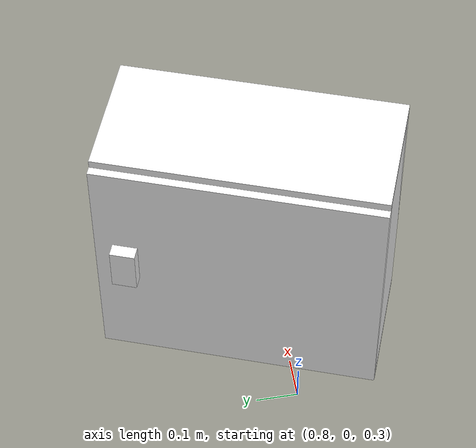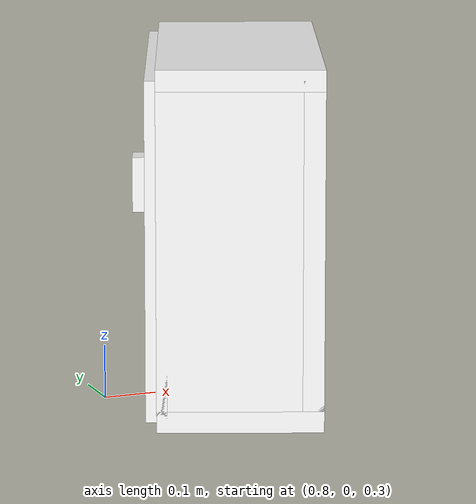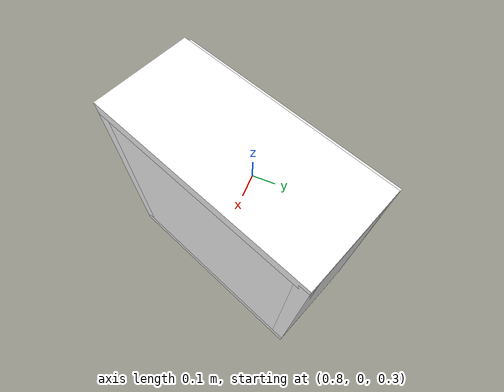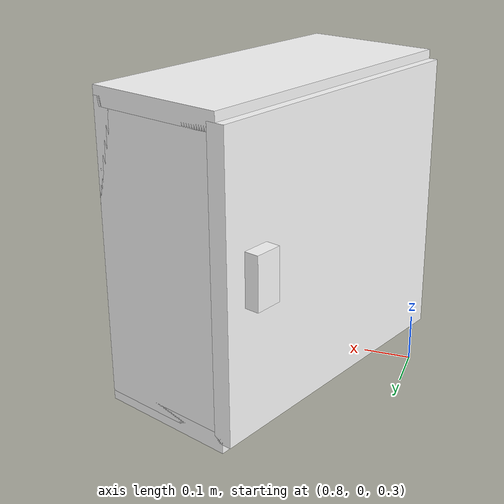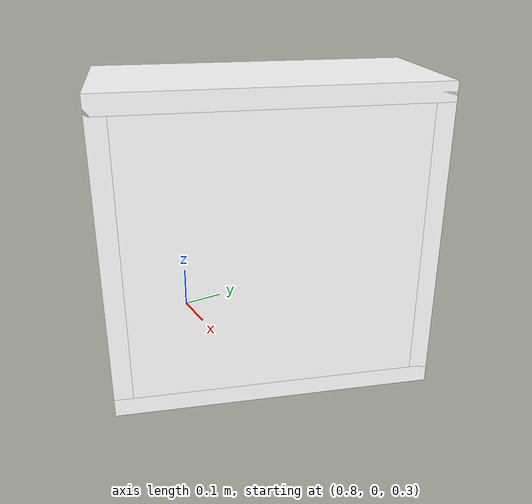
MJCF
<mujoco model="cabinet">
    <compiler angle="radian" eulerseq='zxy' />
    <option gravity = "0 0 0" />
    <option>
        <flag contact = "disable"/>
    </option>
    <statistic	extent="1.0" center="0.0 0.0 0.0"/>
    <visual>
        <map fogstart="3" fogend="5" force="0.1" znear=" 0.100000 " zfar=" 12.000000 "/>
    </visual>
    <size njmax="500" nconmax="100" />
    <actuator>
        <velocity joint="bottom_left_hinge" name="viva_revolution" kv='10'></velocity>
    </actuator>
    <asset>
        <texture builtin="flat" name="tabletex" height="32" width="32" rgb1="1 1 1" type="cube"></texture>
        <texture builtin="flat" name="objtex" height="32" width="32" rgb1="1 1 1" type="cube"></texture>
        <texture builtin="flat" name="handletex" height="32" width="32" rgb1="1 1 1" type="cube"></texture>
        <texture builtin="flat" name="wallpaper" height="32" width="32" rgb1="1 1 1" type="cube"></texture>
        <material name="geomTable" shininess="0.03" specular="0.75" texture="tabletex"></material>
        <material name="geomObj" shininess="0.03" specular="0.75" texture="objtex"></material>
        <material name="geomHandle" shininess="0.03" specular="0.75" texture="handletex"></material>
        <material name="bg" shininess="0.03" specular="0.75" texture="wallpaper"></material>
    </asset>
    <worldbody>
            <body name="cabinet_bottom" pos= " 1.091654 0.064861 0.297707 "  quat= " 0.177827 0.000000 0.000000 0.984062" >
                <inertial pos="0 0 0" mass="1" diaginertia="1 1 1" />
                <geom size= " 0.152638 0.339789 0.019749 "  type="box" material="geomObj" name="b"/>
                <body name="cabinet_left" pos= " 0.000000 -0.320040 0.313324 " >
                    <inertial pos="0 0 0" mass="1" diaginertia="1 1 1" />
                    <geom size= " 0.152638 0.019749 0.313324 "  type="box" material="geomObj" name="c" />
                </body>
                <body name="cabinet_right" pos= " 0.000000 0.320040 0.313324 " >
                    <inertial pos="0 0 0" mass="1" diaginertia="1 1 1" />
                    <geom size= " 0.152638 0.019749 0.313324 "  type="box" material="geomObj" name="d" />
                </body>
                <body name="cabinet_top" pos= " 0.000000 0.000000 0.626648 " >
                    <inertial pos="0 0 0" mass="1" diaginertia="1 1 1" />
                    <geom size= " 0.152638 0.339789 0.019749 "  type="box" material="geomObj" name="e"/>
                </body>
                <body name="cabinet_back" pos= " -0.132888 0.000000 0.313324 "  >
                    <inertial pos="0 0 0" mass="1" diaginertia="1 1 1" />
                    <geom size= " 0.019749 0.339789 0.313324 "  type="box" material="geomObj" name="f" />
                </body>
                <body name="cabinet_left_hinge" pos= " 0.152638 0.339789 0.313324 " >
                    <inertial pos= " 0.000000 -0.339789 0.000000 "  mass="1" diaginertia="1 1 1" />
                    <joint name="bottom_left_hinge" type="hinge" pos="0 0 0" axis="0 0 1" limited="true" range= "0 2.3"  />
                    <geom size= " 0.019749 0.339789 0.313324 "  pos= " 0.000000 -0.339789 0.000000 "  type="box" material="geomObj" name="g"/>
                    <body name="handle_link" pos= " 0.038159 -0.605622 0.019843 " >
                        <inertial pos="0 0 0" mass="1" diaginertia="1 1 1" />
                        <geom size= " 0.015328 0.029941 0.055541 "  type="box" material="geomHandle" name="h"/>
                    </body>
                </body>
            </body>
        <body name="external_camera_body_0" pos="0.0 0 0.00">
            <camera euler="-1.57 1.57 0.0" fovy=" 54.280851 " name="external_camera_0" pos="0.0 0 0"></camera>
            <inertial pos= " 0.00 0.0 0.000000 " mass="1" diaginertia="1 1 1" />
            <joint name="cam_j" pos="0.0 0 0" axis = "1 0 0" type="free" />
        </body>
    </worldbody>
</mujoco>
